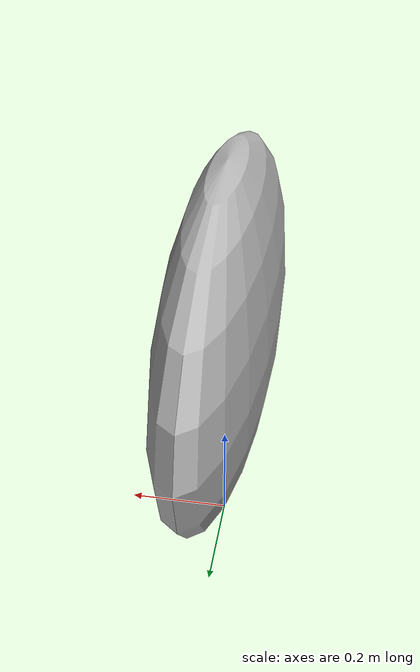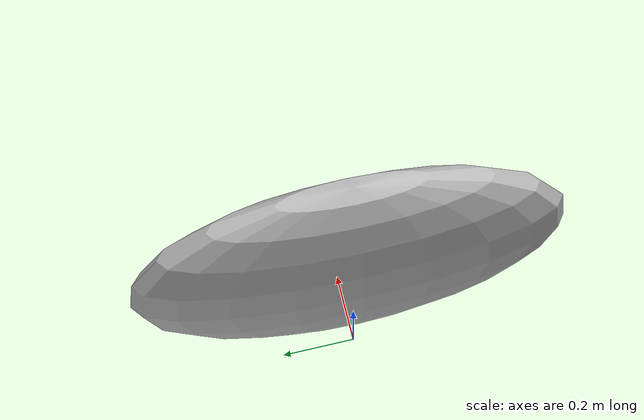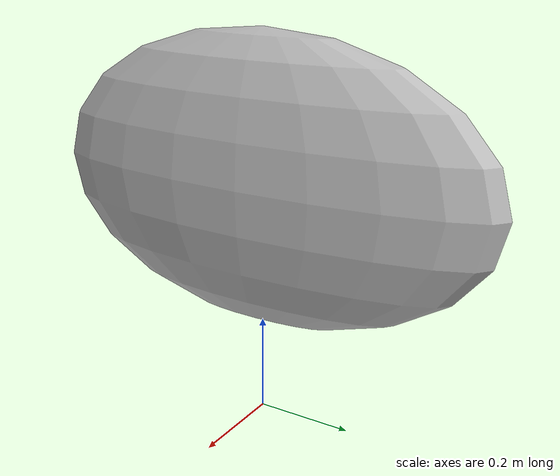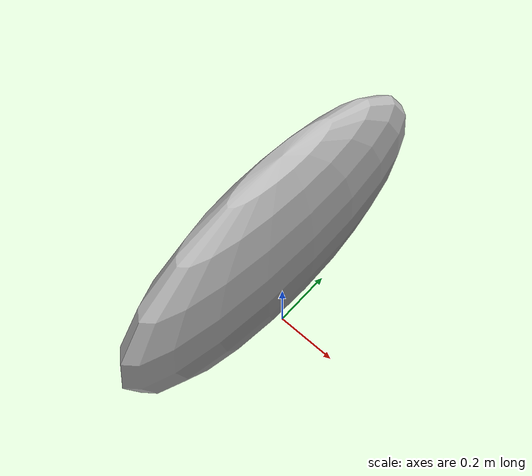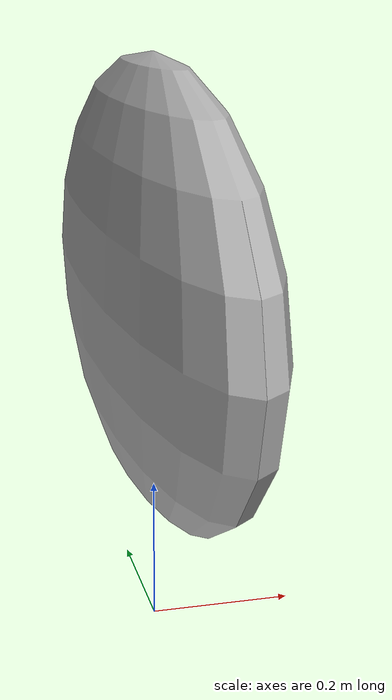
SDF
<?xml version='1.0'?>
<sdf version="1.7">
  <model name="ellipsoid">
    <pose>0 0 0.5 0 0 0</pose>
    <link name="ellipsoid_link">

      <inertial>
        <mass>1.0</mass>
        <inertia> <!-- inertias are tricky to compute -->
          <ixx>0.01</ixx>       <!-- for a box: ixx = 0.083 * mass * (y*y + z*z) -->
          <ixy>0.0</ixy>         <!-- for a box: ixy = 0 -->
          <ixz>0.0</ixz>         <!-- for a box: ixz = 0 -->
          <iyy>0.01</iyy>       <!-- for a box: iyy = 0.083 * mass * (x*x + z*z) -->
          <iyz>0.0</iyz>         <!-- for a box: iyz = 0 -->
          <izz>0.01</izz>       <!-- for a box: izz = 0.083 * mass * (x*x + y*y) -->
        </inertia>
      </inertial>

      <collision name="collision">
        <geometry>
          <ellipsoid>
            <radii>0.1 0.5 0.3</radii>
          </ellipsoid>
        </geometry>
      </collision>

      <visual name="visual">
        <geometry>
          <ellipsoid>
            <radii>0.1 0.5 0.3</radii>
          </ellipsoid>
        </geometry>
      </visual>
    </link>
  </model>
</sdf>
